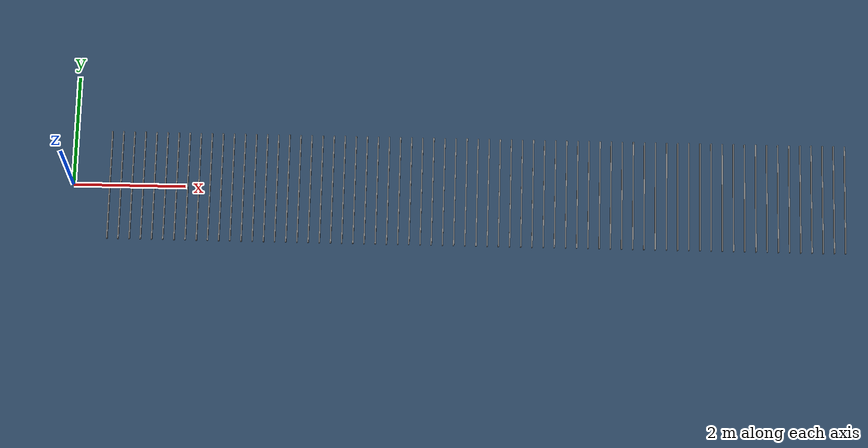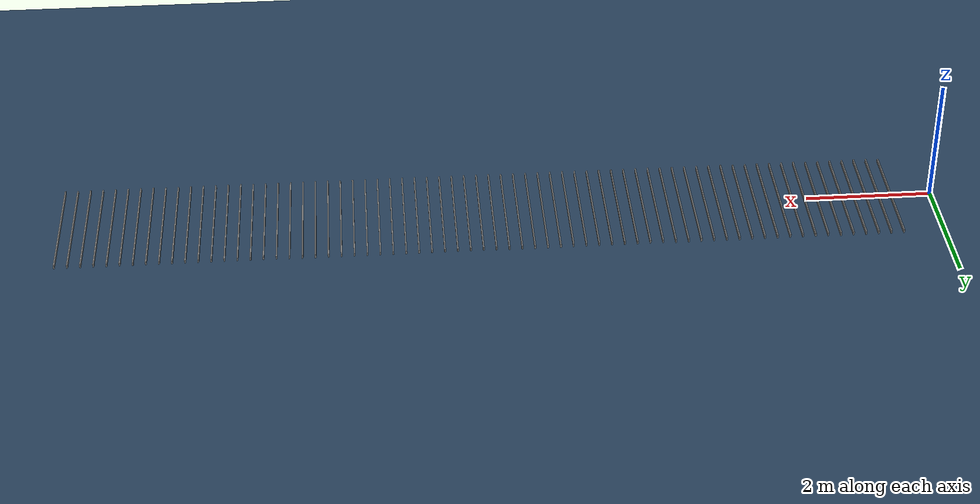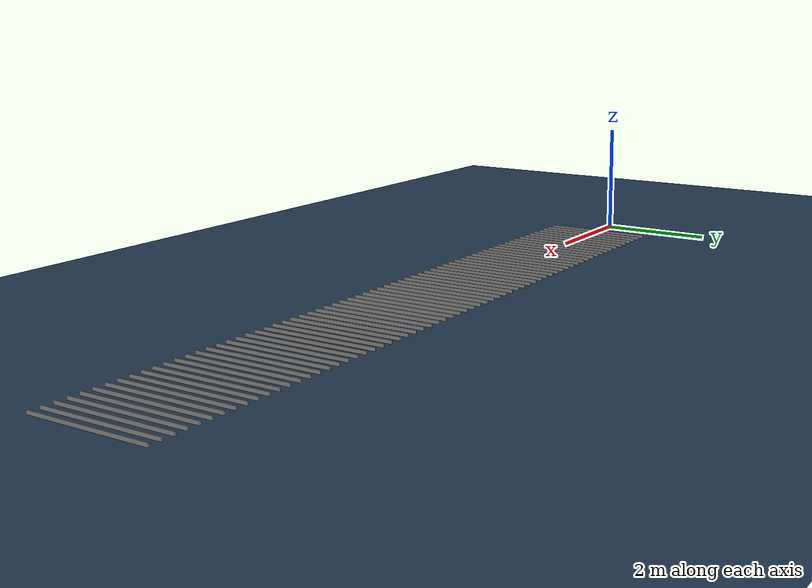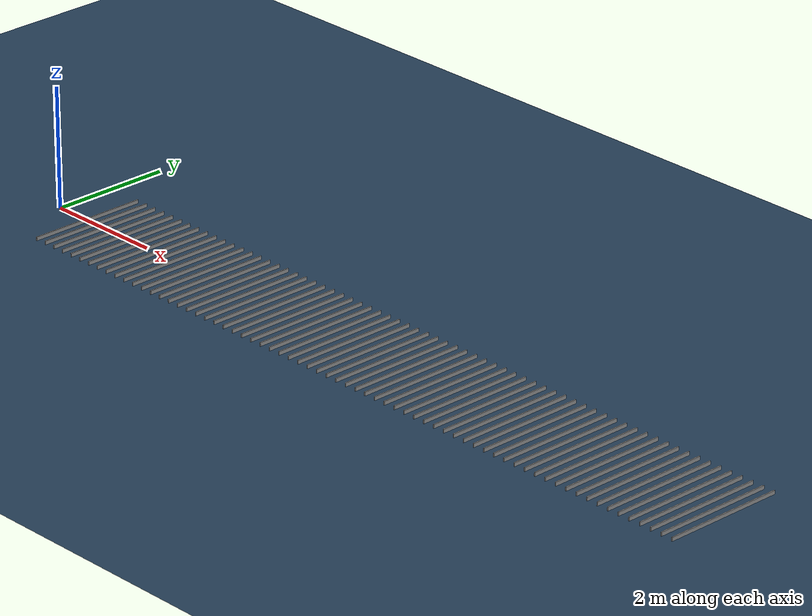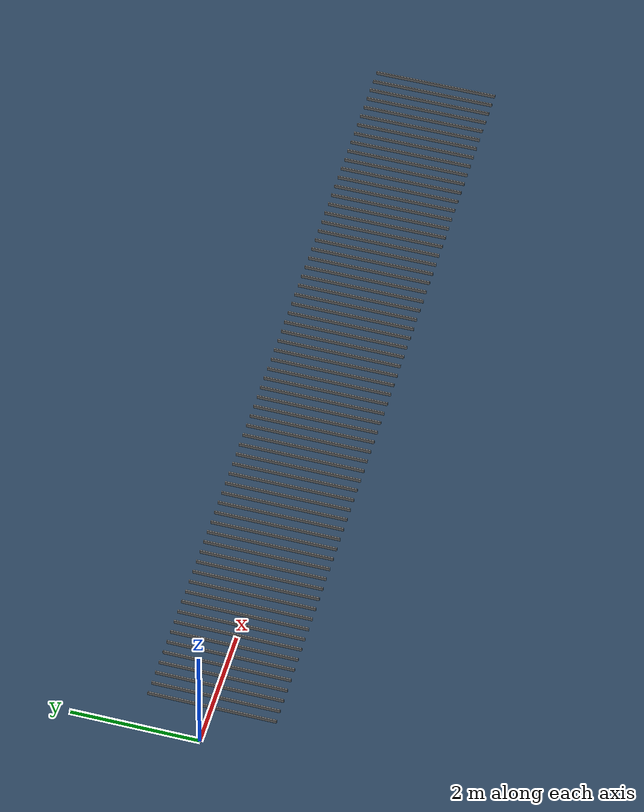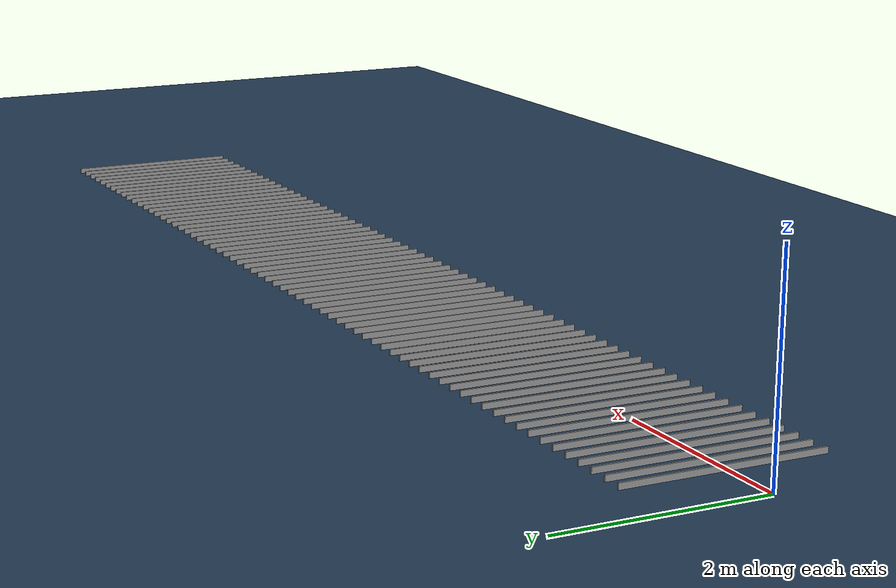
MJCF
<mujoco model="ground">
  <compiler angle="radian"/>

  <default>
    <default class="collision">
      <geom condim="3" group="0" type="mesh" solref="0.00001 1" solimp="0.99 0.99 0.01" />
    </default>
    <default class="visual">
      <geom group="1" conaffinity="0" contype="0" type="mesh" />
    </default>
  </default>

  <asset>
    <texture type="2d" name="groundplane" builtin="checker" mark="edge" rgb1="0.2 0.3 0.4"
        rgb2="0.1 0.2 0.3" markrgb="0.8 0.8 0.8" width="300" height="300"/>
    <material name="groundplane" texture="groundplane" texuniform="true" texrepeat="1 1"
        reflectance="0.2"/>
  </asset>

  <worldbody>
    <light pos="0 0 1.5" dir="0 0 -1" directional="true"/>
    <body name="base_link">
      <geom name="floor" pos="0 0 0" size="0 0 .25" type="plane" material="groundplane" condim="3" group="1"/>
    </body>

  <body pos="0.64 0.0 0">
    <geom class="collision" type="box" size="0.01 1. 0.045" mass="10.0"/>
    <geom class="visual"    type="box" size="0.01 1. 0.045" mass="10.0"/>
  </body>

  <body pos="0.8400000000000001 0.0 0">
    <geom class="collision" type="box" size="0.01 1. 0.045" mass="10.0"/>
    <geom class="visual"    type="box" size="0.01 1. 0.045" mass="10.0"/>
  </body>

  <body pos="1.04 0.0 0">
    <geom class="collision" type="box" size="0.01 1. 0.045" mass="10.0"/>
    <geom class="visual"    type="box" size="0.01 1. 0.045" mass="10.0"/>
  </body>

  <body pos="1.24 0.0 0">
    <geom class="collision" type="box" size="0.01 1. 0.045" mass="10.0"/>
    <geom class="visual"    type="box" size="0.01 1. 0.045" mass="10.0"/>
  </body>

  <body pos="1.44 0.0 0">
    <geom class="collision" type="box" size="0.01 1. 0.045" mass="10.0"/>
    <geom class="visual"    type="box" size="0.01 1. 0.045" mass="10.0"/>
  </body>

  <body pos="1.64 0.0 0">
    <geom class="collision" type="box" size="0.01 1. 0.045" mass="10.0"/>
    <geom class="visual"    type="box" size="0.01 1. 0.045" mass="10.0"/>
  </body>

  <body pos="1.8399999999999999 0.0 0">
    <geom class="collision" type="box" size="0.01 1. 0.045" mass="10.0"/>
    <geom class="visual"    type="box" size="0.01 1. 0.045" mass="10.0"/>
  </body>

  <body pos="2.04 0.0 0">
    <geom class="collision" type="box" size="0.01 1. 0.045" mass="10.0"/>
    <geom class="visual"    type="box" size="0.01 1. 0.045" mass="10.0"/>
  </body>

  <body pos="2.24 0.0 0">
    <geom class="collision" type="box" size="0.01 1. 0.045" mass="10.0"/>
    <geom class="visual"    type="box" size="0.01 1. 0.045" mass="10.0"/>
  </body>

  <body pos="2.4400000000000004 0.0 0">
    <geom class="collision" type="box" size="0.01 1. 0.045" mass="10.0"/>
    <geom class="visual"    type="box" size="0.01 1. 0.045" mass="10.0"/>
  </body>

  <body pos="2.6400000000000006 0.0 0">
    <geom class="collision" type="box" size="0.01 1. 0.045" mass="10.0"/>
    <geom class="visual"    type="box" size="0.01 1. 0.045" mass="10.0"/>
  </body>

  <body pos="2.8400000000000007 0.0 0">
    <geom class="collision" type="box" size="0.01 1. 0.045" mass="10.0"/>
    <geom class="visual"    type="box" size="0.01 1. 0.045" mass="10.0"/>
  </body>

  <body pos="3.040000000000001 0.0 0">
    <geom class="collision" type="box" size="0.01 1. 0.045" mass="10.0"/>
    <geom class="visual"    type="box" size="0.01 1. 0.045" mass="10.0"/>
  </body>

  <body pos="3.240000000000001 0.0 0">
    <geom class="collision" type="box" size="0.01 1. 0.045" mass="10.0"/>
    <geom class="visual"    type="box" size="0.01 1. 0.045" mass="10.0"/>
  </body>

  <body pos="3.4400000000000013 0.0 0">
    <geom class="collision" type="box" size="0.01 1. 0.045" mass="10.0"/>
    <geom class="visual"    type="box" size="0.01 1. 0.045" mass="10.0"/>
  </body>

  <body pos="3.6400000000000015 0.0 0">
    <geom class="collision" type="box" size="0.01 1. 0.045" mass="10.0"/>
    <geom class="visual"    type="box" size="0.01 1. 0.045" mass="10.0"/>
  </body>

  <body pos="3.8400000000000016 0.0 0">
    <geom class="collision" type="box" size="0.01 1. 0.045" mass="10.0"/>
    <geom class="visual"    type="box" size="0.01 1. 0.045" mass="10.0"/>
  </body>

  <body pos="4.040000000000002 0.0 0">
    <geom class="collision" type="box" size="0.01 1. 0.045" mass="10.0"/>
    <geom class="visual"    type="box" size="0.01 1. 0.045" mass="10.0"/>
  </body>

  <body pos="4.240000000000002 0.0 0">
    <geom class="collision" type="box" size="0.01 1. 0.045" mass="10.0"/>
    <geom class="visual"    type="box" size="0.01 1. 0.045" mass="10.0"/>
  </body>

  <body pos="4.440000000000002 0.0 0">
    <geom class="collision" type="box" size="0.01 1. 0.045" mass="10.0"/>
    <geom class="visual"    type="box" size="0.01 1. 0.045" mass="10.0"/>
  </body>

  <body pos="4.640000000000002 0.0 0">
    <geom class="collision" type="box" size="0.01 1. 0.045" mass="10.0"/>
    <geom class="visual"    type="box" size="0.01 1. 0.045" mass="10.0"/>
  </body>

  <body pos="4.8400000000000025 0.0 0">
    <geom class="collision" type="box" size="0.01 1. 0.045" mass="10.0"/>
    <geom class="visual"    type="box" size="0.01 1. 0.045" mass="10.0"/>
  </body>

  <body pos="5.040000000000003 0.0 0">
    <geom class="collision" type="box" size="0.01 1. 0.045" mass="10.0"/>
    <geom class="visual"    type="box" size="0.01 1. 0.045" mass="10.0"/>
  </body>

  <body pos="5.240000000000003 0.0 0">
    <geom class="collision" type="box" size="0.01 1. 0.045" mass="10.0"/>
    <geom class="visual"    type="box" size="0.01 1. 0.045" mass="10.0"/>
  </body>

  <body pos="5.440000000000003 0.0 0">
    <geom class="collision" type="box" size="0.01 1. 0.045" mass="10.0"/>
    <geom class="visual"    type="box" size="0.01 1. 0.045" mass="10.0"/>
  </body>

  <body pos="5.640000000000003 0.0 0">
    <geom class="collision" type="box" size="0.01 1. 0.045" mass="10.0"/>
    <geom class="visual"    type="box" size="0.01 1. 0.045" mass="10.0"/>
  </body>

  <body pos="5.840000000000003 0.0 0">
    <geom class="collision" type="box" size="0.01 1. 0.045" mass="10.0"/>
    <geom class="visual"    type="box" size="0.01 1. 0.045" mass="10.0"/>
  </body>

  <body pos="6.040000000000004 0.0 0">
    <geom class="collision" type="box" size="0.01 1. 0.045" mass="10.0"/>
    <geom class="visual"    type="box" size="0.01 1. 0.045" mass="10.0"/>
  </body>

  <body pos="6.240000000000004 0.0 0">
    <geom class="collision" type="box" size="0.01 1. 0.045" mass="10.0"/>
    <geom class="visual"    type="box" size="0.01 1. 0.045" mass="10.0"/>
  </body>

  <body pos="6.440000000000004 0.0 0">
    <geom class="collision" type="box" size="0.01 1. 0.045" mass="10.0"/>
    <geom class="visual"    type="box" size="0.01 1. 0.045" mass="10.0"/>
  </body>

  <body pos="6.640000000000004 0.0 0">
    <geom class="collision" type="box" size="0.01 1. 0.045" mass="10.0"/>
    <geom class="visual"    type="box" size="0.01 1. 0.045" mass="10.0"/>
  </body>

  <body pos="6.840000000000004 0.0 0">
    <geom class="collision" type="box" size="0.01 1. 0.045" mass="10.0"/>
    <geom class="visual"    type="box" size="0.01 1. 0.045" mass="10.0"/>
  </body>

  <body pos="7.0400000000000045 0.0 0">
    <geom class="collision" type="box" size="0.01 1. 0.045" mass="10.0"/>
    <geom class="visual"    type="box" size="0.01 1. 0.045" mass="10.0"/>
  </body>

  <body pos="7.240000000000005 0.0 0">
    <geom class="collision" type="box" size="0.01 1. 0.045" mass="10.0"/>
    <geom class="visual"    type="box" size="0.01 1. 0.045" mass="10.0"/>
  </body>

  <body pos="7.440000000000005 0.0 0">
    <geom class="collision" type="box" size="0.01 1. 0.045" mass="10.0"/>
    <geom class="visual"    type="box" size="0.01 1. 0.045" mass="10.0"/>
  </body>

  <body pos="7.640000000000005 0.0 0">
    <geom class="collision" type="box" size="0.01 1. 0.045" mass="10.0"/>
    <geom class="visual"    type="box" size="0.01 1. 0.045" mass="10.0"/>
  </body>

  <body pos="7.840000000000005 0.0 0">
    <geom class="collision" type="box" size="0.01 1. 0.045" mass="10.0"/>
    <geom class="visual"    type="box" size="0.01 1. 0.045" mass="10.0"/>
  </body>

  <body pos="8.040000000000004 0.0 0">
    <geom class="collision" type="box" size="0.01 1. 0.045" mass="10.0"/>
    <geom class="visual"    type="box" size="0.01 1. 0.045" mass="10.0"/>
  </body>

  <body pos="8.240000000000004 0.0 0">
    <geom class="collision" type="box" size="0.01 1. 0.045" mass="10.0"/>
    <geom class="visual"    type="box" size="0.01 1. 0.045" mass="10.0"/>
  </body>

  <body pos="8.440000000000003 0.0 0">
    <geom class="collision" type="box" size="0.01 1. 0.045" mass="10.0"/>
    <geom class="visual"    type="box" size="0.01 1. 0.045" mass="10.0"/>
  </body>

  <body pos="8.640000000000002 0.0 0">
    <geom class="collision" type="box" size="0.01 1. 0.045" mass="10.0"/>
    <geom class="visual"    type="box" size="0.01 1. 0.045" mass="10.0"/>
  </body>

  <body pos="8.840000000000002 0.0 0">
    <geom class="collision" type="box" size="0.01 1. 0.045" mass="10.0"/>
    <geom class="visual"    type="box" size="0.01 1. 0.045" mass="10.0"/>
  </body>

  <body pos="9.040000000000001 0.0 0">
    <geom class="collision" type="box" size="0.01 1. 0.045" mass="10.0"/>
    <geom class="visual"    type="box" size="0.01 1. 0.045" mass="10.0"/>
  </body>

  <body pos="9.24 0.0 0">
    <geom class="collision" type="box" size="0.01 1. 0.045" mass="10.0"/>
    <geom class="visual"    type="box" size="0.01 1. 0.045" mass="10.0"/>
  </body>

  <body pos="9.44 0.0 0">
    <geom class="collision" type="box" size="0.01 1. 0.045" mass="10.0"/>
    <geom class="visual"    type="box" size="0.01 1. 0.045" mass="10.0"/>
  </body>

  <body pos="9.639999999999999 0.0 0">
    <geom class="collision" type="box" size="0.01 1. 0.045" mass="10.0"/>
    <geom class="visual"    type="box" size="0.01 1. 0.045" mass="10.0"/>
  </body>

  <body pos="9.839999999999998 0.0 0">
    <geom class="collision" type="box" size="0.01 1. 0.045" mass="10.0"/>
    <geom class="visual"    type="box" size="0.01 1. 0.045" mass="10.0"/>
  </body>

  <body pos="10.039999999999997 0.0 0">
    <geom class="collision" type="box" size="0.01 1. 0.045" mass="10.0"/>
    <geom class="visual"    type="box" size="0.01 1. 0.045" mass="10.0"/>
  </body>

  <body pos="10.239999999999997 0.0 0">
    <geom class="collision" type="box" size="0.01 1. 0.045" mass="10.0"/>
    <geom class="visual"    type="box" size="0.01 1. 0.045" mass="10.0"/>
  </body>

  <body pos="10.439999999999996 0.0 0">
    <geom class="collision" type="box" size="0.01 1. 0.045" mass="10.0"/>
    <geom class="visual"    type="box" size="0.01 1. 0.045" mass="10.0"/>
  </body>

  <body pos="10.639999999999995 0.0 0">
    <geom class="collision" type="box" size="0.01 1. 0.045" mass="10.0"/>
    <geom class="visual"    type="box" size="0.01 1. 0.045" mass="10.0"/>
  </body>

  <body pos="10.839999999999995 0.0 0">
    <geom class="collision" type="box" size="0.01 1. 0.045" mass="10.0"/>
    <geom class="visual"    type="box" size="0.01 1. 0.045" mass="10.0"/>
  </body>

  <body pos="11.039999999999994 0.0 0">
    <geom class="collision" type="box" size="0.01 1. 0.045" mass="10.0"/>
    <geom class="visual"    type="box" size="0.01 1. 0.045" mass="10.0"/>
  </body>

  <body pos="11.239999999999993 0.0 0">
    <geom class="collision" type="box" size="0.01 1. 0.045" mass="10.0"/>
    <geom class="visual"    type="box" size="0.01 1. 0.045" mass="10.0"/>
  </body>

  <body pos="11.439999999999992 0.0 0">
    <geom class="collision" type="box" size="0.01 1. 0.045" mass="10.0"/>
    <geom class="visual"    type="box" size="0.01 1. 0.045" mass="10.0"/>
  </body>

  <body pos="11.639999999999992 0.0 0">
    <geom class="collision" type="box" size="0.01 1. 0.045" mass="10.0"/>
    <geom class="visual"    type="box" size="0.01 1. 0.045" mass="10.0"/>
  </body>

  <body pos="11.839999999999991 0.0 0">
    <geom class="collision" type="box" size="0.01 1. 0.045" mass="10.0"/>
    <geom class="visual"    type="box" size="0.01 1. 0.045" mass="10.0"/>
  </body>

  <body pos="12.03999999999999 0.0 0">
    <geom class="collision" type="box" size="0.01 1. 0.045" mass="10.0"/>
    <geom class="visual"    type="box" size="0.01 1. 0.045" mass="10.0"/>
  </body>

  <body pos="12.23999999999999 0.0 0">
    <geom class="collision" type="box" size="0.01 1. 0.045" mass="10.0"/>
    <geom class="visual"    type="box" size="0.01 1. 0.045" mass="10.0"/>
  </body>

  <body pos="12.439999999999989 0.0 0">
    <geom class="collision" type="box" size="0.01 1. 0.045" mass="10.0"/>
    <geom class="visual"    type="box" size="0.01 1. 0.045" mass="10.0"/>
  </body>

  <body pos="12.639999999999988 0.0 0">
    <geom class="collision" type="box" size="0.01 1. 0.045" mass="10.0"/>
    <geom class="visual"    type="box" size="0.01 1. 0.045" mass="10.0"/>
  </body>

  <body pos="12.839999999999987 0.0 0">
    <geom class="collision" type="box" size="0.01 1. 0.045" mass="10.0"/>
    <geom class="visual"    type="box" size="0.01 1. 0.045" mass="10.0"/>
  </body>

  <body pos="13.039999999999987 0.0 0">
    <geom class="collision" type="box" size="0.01 1. 0.045" mass="10.0"/>
    <geom class="visual"    type="box" size="0.01 1. 0.045" mass="10.0"/>
  </body>

  <body pos="13.239999999999986 0.0 0">
    <geom class="collision" type="box" size="0.01 1. 0.045" mass="10.0"/>
    <geom class="visual"    type="box" size="0.01 1. 0.045" mass="10.0"/>
  </body>

  <body pos="13.439999999999985 0.0 0">
    <geom class="collision" type="box" size="0.01 1. 0.045" mass="10.0"/>
    <geom class="visual"    type="box" size="0.01 1. 0.045" mass="10.0"/>
  </body>

  <body pos="13.639999999999985 0.0 0">
    <geom class="collision" type="box" size="0.01 1. 0.045" mass="10.0"/>
    <geom class="visual"    type="box" size="0.01 1. 0.045" mass="10.0"/>
  </body>

  <body pos="13.839999999999984 0.0 0">
    <geom class="collision" type="box" size="0.01 1. 0.045" mass="10.0"/>
    <geom class="visual"    type="box" size="0.01 1. 0.045" mass="10.0"/>
  </body>

  </worldbody>

</mujoco>
